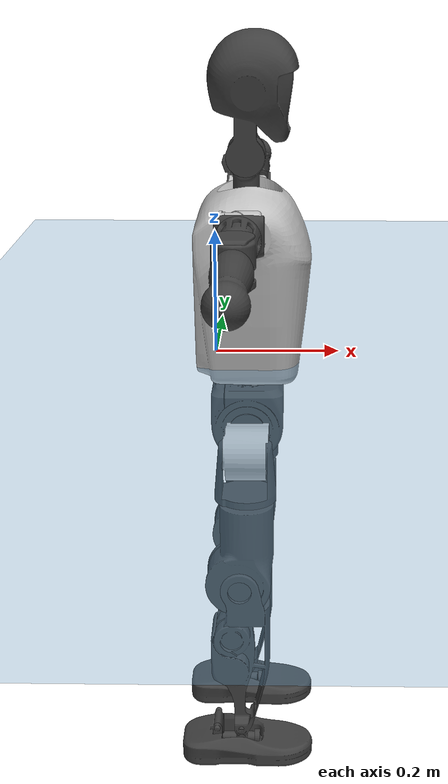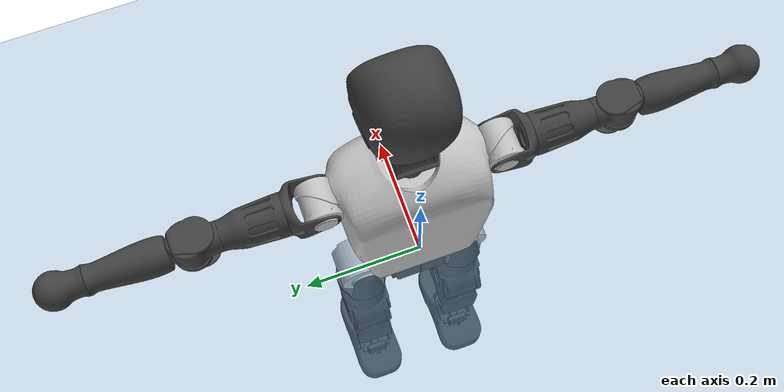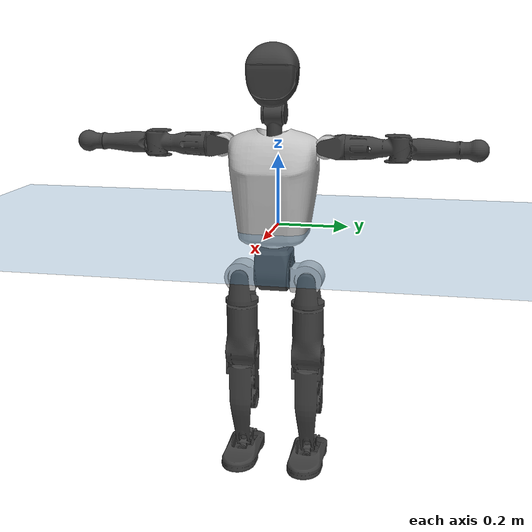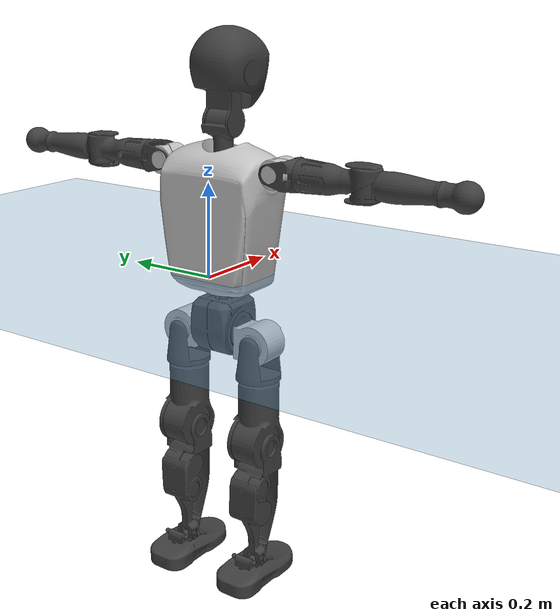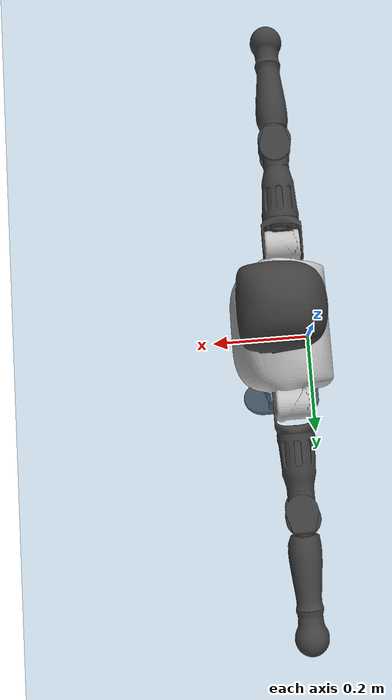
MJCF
<mujoco model="T1">
  <compiler angle="radian" assetdir="assets" balanceinertia="true" inertiafromgeom="false"/>

  <option timestep="0.005" density="1.2" viscosity="2e-05"/>

  <size nkey="1"/>

  <visual>
    <quality shadowsize="8192"/>
    <map shadowclip="0.5"/>
  </visual>

  <default>
    <default class="/">
      <joint armature="0.01" damping="0.01" frictionloss="0.1"/>
      <geom contype="0" conaffinity="0" group="1" solref="-1000 -80"/>
      <site size="0.01 0.005 0.005" group="5"/>
      <general forcelimited="true" biastype="affine" gainprm="25" biasprm="0 -25 -0.6"/>
      <default class="t1">
        <geom rgba="0.25 0.25 0.25 1"/>
        <default class="visual">
          <geom type="mesh" group="2"/>
        </default>
        <default class="collision">
          <geom group="3"/>
        </default>
        <default class="foot">
          <geom size="0.1115 0.05 0.015" type="box" condim="6" group="4" priority="1" solimp="0.015 1 0.015"/>
        </default>
        <default class="reward_collision_sphere">
          <geom group="5" rgba="1 0 0 1"/>
        </default>
      </default>
    </default>
  </default>

  <asset>
    <texture type="skybox" colorspace="auto" name="//unnamed_texture_0" builtin="gradient" rgb1="0.95 0.95 0.95" rgb2="0.95 0.95 0.95" width="100" height="600"/>
    <texture type="2d" colorspace="auto" name="texplane" builtin="checker" rgb1="0.345 0.575 0.748" rgb2="0.345 0.575 0.748" markrgb="1 1 1" width="512" height="512"/>
    <material name="MatPlane" class="/" texture="texplane" texuniform="true" texrepeat="2 2" specular="0.9"/>
    <mesh name="Trunk" class="/" file="Trunk.stl"/>
    <mesh name="H1" class="/" file="H1.stl"/>
    <mesh name="H2" class="/" file="H2.stl"/>
    <mesh name="AL1" class="/" file="AL1.stl"/>
    <mesh name="AL2" class="/" file="AL2.stl"/>
    <mesh name="AL3" class="/" file="AL3.stl"/>
    <mesh name="left_hand_link" class="/" file="left_hand_link.stl"/>
    <mesh name="AR1" class="/" file="AR1.stl"/>
    <mesh name="AR2" class="/" file="AR2.stl"/>
    <mesh name="AR3" class="/" file="AR3.stl"/>
    <mesh name="right_hand_link" class="/" file="right_hand_link.stl"/>
    <mesh name="Waist" class="/" file="Waist.stl"/>
    <mesh name="Hip_Pitch_Left" class="/" file="Hip_Pitch_Left.stl"/>
    <mesh name="Hip_Roll_Left" class="/" file="Hip_Roll_Left.stl"/>
    <mesh name="Hip_Yaw_Left" class="/" file="Hip_Yaw_Left.stl"/>
    <mesh name="Shank_Left" class="/" file="Shank_Left.stl"/>
    <mesh name="Ankle_Cross_Left" class="/" file="Ankle_Cross_Left.stl"/>
    <mesh name="left_foot_link" class="/" file="left_foot_link.stl"/>
    <mesh name="Hip_Pitch_Right" class="/" file="Hip_Pitch_Right.stl"/>
    <mesh name="Hip_Roll_Right" class="/" file="Hip_Roll_Right.stl"/>
    <mesh name="Hip_Yaw_Right" class="/" file="Hip_Yaw_Right.stl"/>
    <mesh name="Shank_Right" class="/" file="Shank_Right.stl"/>
    <mesh name="Ankle_Cross_Right" class="/" file="Ankle_Cross_Right.stl"/>
    <mesh name="right_foot_link" class="/" file="right_foot_link.stl"/>
  </asset>

  <worldbody>
    <geom name="floor" class="/" size="100 100 0.125" type="plane" group="0" material="MatPlane"/>
    <light name="toplight_shadow" class="/" pos="0 0 5" dir="0.0990148 0.0990148 -0.990148" type="directional" ambient="0.04 0.04 0.04" diffuse="0.55 0.55 0.55" specular="0.12 0.12 0.12"/>
    <light name="toplight_fill" class="/" pos="0 0 5" dir="0.0990148 0.0990148 -0.990148" type="directional" castshadow="false" ambient="0.04 0.04 0.04" diffuse="0.3 0.3 0.3" specular="0.08 0.08 0.08"/>
    <body name="trunk" childclass="t1" pos="0.000670812 -0.000187761 -0.000449863" quat="1 -6.7476e-05 -0.000160711 5.04688e-05">
      <inertial pos="0.0441849 -0.000320128 0.109862" quat="0.999956 0.000365218 -0.0093976 0.000492315" mass="9.22692" diaginertia="0.032598 0.0479876 0.0732907"/>
      <joint name="//unnamed_joint_0" type="free" armature="0" damping="0" frictionloss="0"/>
      <geom name="//unnamed_geom_1" class="visual" rgba="0.76 0.76 0.76 1" mesh="Trunk"/>
      <geom name="//unnamed_geom_2" class="collision" size="0.0692599 0.0923466 0.13852" pos="0.0487237 0 0.126221" type="box"/>
      <geom name="//unnamed_geom_3" class="reward_collision_sphere" size="0.106199" pos="0.0487237 0 0.105185"/>
      <geom name="//unnamed_geom_4" class="reward_collision_sphere" size="0.013852" pos="0.0487237 0.0770516 0"/>
      <geom name="//unnamed_geom_5" class="reward_collision_sphere" size="0.013852" pos="0.0487237 -0.0770516 0"/>
      <geom name="//unnamed_geom_6" class="reward_collision_sphere" size="0.013852" pos="0.0487237 0.0969944 0.189332"/>
      <geom name="//unnamed_geom_7" class="reward_collision_sphere" size="0.013852" pos="0.0487237 -0.0969944 0.189332"/>
      <site name="imu" pos="-0.00224517 0.000171992 0.000376865" size="0.00923466"/>
      <camera name="track" pos="0 -1.81298 0" quat="0.707107 0.707107 0 0" mode="trackcom"/>
      <camera name="ego_camera" pos="0.0990715 0 0.441775" quat="-0.5 -0.5 0.5 0.5"/>
      <body name="H1" pos="0.0503098 -2.28697e-05 0.255978" quat="1 -3.44353e-05 1.24307e-05 6.39312e-05">
        <inertial pos="-0.00115289 -0.00217187 0.0599618" quat="0.761361 -0.0188309 0.00250402 0.64805" mass="0.351453" diaginertia="8.67521e-05 0.000137158 0.000195151"/>
        <joint name="AAHead_yaw" pos="0 0 0" axis="-0.00127183 -0.000874419 0.999999" range="-1.55504 1.57511" armature="0.00930295" damping="0.0069663" frictionloss="0.0986174"/>
        <geom name="//unnamed_geom_8" class="visual" mesh="H1"/>
        <body name="H2" pos="-0.000760326 -0.000191058 0.0642576" quat="1 -2.76823e-07 -4.3124e-05 4.04392e-05">
          <inertial pos="0.00590556 0.0011522 0.103955" quat="0.988061 0.107399 -0.0780695 -0.0781395" mass="0.494659" diaginertia="0.000725708 0.00116549 0.00223508"/>
          <joint name="Head_pitch" pos="0 0 0" axis="-0.00192319 -0.999996 -0.00221557" range="-1.22083 0.352572" armature="0.00885698" damping="0.00680814" frictionloss="0.0920823"/>
          <geom name="//unnamed_geom_9" class="visual" mesh="H2"/>
          <geom name="//unnamed_geom_10" class="collision" size="0.0738772" pos="0.00812062 0 0.115703"/>
          <geom name="//unnamed_geom_11" class="reward_collision_sphere" size="0.0831119" pos="0.0162412 0 0.105185"/>
        </body>
      </body>
      <body name="AL1" pos="0.0477089 0.0972804 0.230682" quat="1 3.17741e-05 0.000462 1.7417e-06">
        <inertial pos="0.000246073 0.0405141 0.000259773" quat="0.500088 0.498773 -0.506588 0.494475" mass="0.416309" diaginertia="0.000484007 0.000785116 0.000378592"/>
        <joint name="Left_Shoulder_Pitch" pos="0 0 0" axis="0.000540827 0.999994 -0.00343468" range="-3.30356 1.20554" armature="0.00933197" damping="0.00795434" frictionloss="0.0899284"/>
        <geom name="//unnamed_geom_12" class="visual" rgba="0.76 0.76 0.76 1" mesh="AL1"/>
        <body name="AL2" pos="0.000996097 0.0434426 0.000915341" quat="1 -6.30276e-07 1.65006e-06 -3.49061e-07">
          <inertial pos="0.0026355 0.0352056 -0.000103843" quat="0.488135 0.511595 -0.488175 0.511547" mass="0.125667" diaginertia="0.000141405 0.000212602 0.000226271"/>
          <joint name="Left_Shoulder_Roll" pos="0 0 0" axis="-0.999996 -0.00251151 -0.000865971" range="-1.55441 1.72288" armature="0.00918624" damping="0.00454863" frictionloss="0.0908522"/>
          <geom name="//unnamed_geom_13" class="visual" mesh="AL2"/>
          <body name="AL3" pos="0.00077034 0.0548372 -0.000246561" quat="1 6.26273e-05 -5.32098e-05 -3.45555e-05">
            <inertial pos="-0.00133277 0.0771697 -0.000100293" quat="0.707349 0.706861 -7.95705e-05 -0.00216847" mass="0.796786" diaginertia="0.00448655 0.00776357 0.000797714"/>
            <joint name="Left_Elbow_Pitch" pos="0 0 0" axis="0.000816941 -1 7.13648e-05" range="-2.27737 2.26742" armature="0.00957939" damping="0.00981139" frictionloss="0.0901004"/>
            <geom name="//unnamed_geom_14" class="visual" mesh="AL3"/>
            <geom name="//unnamed_geom_15" class="collision" size="0.027704 0.0692599" pos="0 0.0453245 0" quat="0.707105 0.707108 0 0" type="cylinder"/>
            <geom name="//unnamed_geom_16" class="reward_collision_sphere" size="0.0332448"/>
            <body name="left_hand_link" pos="0.00126245 0.133481 -0.000261401" quat="1 0.00018473 3.83289e-05 -9.77829e-05">
              <inertial pos="2.79461e-05 0.100103 -0.000295523" quat="0.705512 0.708689 0.00105532 -0.00327652" mass="0.255908" diaginertia="0.00285812 0.00495688 0.000273727"/>
              <joint name="Left_Elbow_Yaw" pos="0 0 0" axis="0.00365168 0.00326937 0.999988" range="-2.45536 0.0148069" armature="0.00911314" damping="0.0115778" frictionloss="0.0916826"/>
              <geom name="//unnamed_geom_17" class="visual" mesh="left_hand_link"/>
              <geom name="//unnamed_geom_18" class="collision" size="0.027704 0.0808032" pos="0 0.117844 0" quat="0.707105 0.707108 0 0" type="cylinder"/>
              <geom name="//unnamed_geom_19" class="reward_collision_sphere" size="0.0461733"/>
              <geom name="//unnamed_geom_20" class="reward_collision_sphere" size="0.0323213" pos="0 0.0997138 0"/>
              <geom name="//unnamed_geom_21" class="reward_collision_sphere" size="0.0323213" pos="0 0.194895 0"/>
            </body>
          </body>
        </body>
      </body>
      <body name="AR1" pos="0.0452842 -0.0962425 0.230805" quat="1 7.8671e-05 0.000338676 -0.000107007">
        <inertial pos="-0.00139107 -0.0412239 0.000878972" quat="0.502946 0.494685 -0.505975 0.496308" mass="0.421894" diaginertia="0.000487544 0.000792625 0.000381295"/>
        <joint name="Right_Shoulder_Pitch" pos="0 0 0" axis="0.00129132 -0.999998 0.00137853" range="-1.23135 3.31274" armature="0.00901142" damping="0.00504412" frictionloss="0.0910268"/>
        <geom name="//unnamed_geom_22" class="visual" rgba="0.76 0.76 0.76 1" mesh="AR1"/>
        <body name="AR2" pos="-0.000626702 -0.0408463 -7.23626e-05" quat="1 -0.000126126 -0.000181839 -0.000542433">
          <inertial pos="0.00394036 -0.0344287 0.00133489" quat="0.512624 0.490223 -0.507843 0.488869" mass="0.128982" diaginertia="0.000144459 0.000215922 0.000227414"/>
          <joint name="Right_Shoulder_Roll" pos="0 0 0" axis="-0.999996 0.00284322 -8.2382e-05" stiffness="0.00376805" range="-1.73791 1.57776" armature="0.00895821" damping="0.00536037" frictionloss="0.0901719"/>
          <geom name="//unnamed_geom_23" class="visual" mesh="AR2"/>
          <body name="AR3" pos="-0.000492785 -0.0551381 0.000127539" quat="1 6.44264e-05 -3.66688e-05 -3.74316e-05">
            <inertial pos="0.00085265 -0.077562 0.000399457" quat="0.707962 0.70625 0.000359185 -0.000979905" mass="0.810105" diaginertia="0.00453908 0.00790613 0.000811488"/>
            <joint name="Right_Elbow_Pitch" pos="0 0 0" axis="-0.000248824 1 0.000165047" stiffness="0.00230298" range="-2.27991 2.26759" armature="0.00920812" damping="0.00902675" frictionloss="0.0986099"/>
            <geom name="//unnamed_geom_24" class="visual" mesh="AR3"/>
            <geom name="//unnamed_geom_25" class="collision" size="0.027704 0.0692599" pos="0 -0.0453245 0" quat="0.707105 0.707108 0 0" type="cylinder"/>
            <geom name="//unnamed_geom_26" class="reward_collision_sphere" size="0.0332448"/>
            <body name="right_hand_link" pos="0.000307339 -0.132564 -9.66387e-06" quat="1 -3.18249e-05 6.47163e-05 -2.08445e-05">
              <inertial pos="-0.000226729 -0.0994425 0.000398631" quat="0.705787 0.708424 -0.000442382 0.00023508" mass="0.261585" diaginertia="0.0029143 0.00504283 0.000283212"/>
              <joint name="Right_Elbow_Yaw" pos="0 0 0" axis="0.00232271 0.00142421 0.999996" stiffness="0.000150733" range="0.00184486 2.44017" armature="0.00960503" damping="0.00592005" frictionloss="0.0880926"/>
              <geom name="//unnamed_geom_27" class="visual" mesh="right_hand_link"/>
              <geom name="//unnamed_geom_28" class="collision" size="0.027704 0.0808032" pos="0 -0.117844 0" quat="0.707105 0.707108 0 0" type="cylinder"/>
              <geom name="//unnamed_geom_29" class="reward_collision_sphere" size="0.0461733"/>
              <geom name="//unnamed_geom_30" class="reward_collision_sphere" size="0.0323213" pos="0 -0.0997138 0"/>
              <geom name="//unnamed_geom_31" class="reward_collision_sphere" size="0.0323213" pos="0 -0.194895 0"/>
            </body>
          </body>
        </body>
      </body>
      <body name="Waist" pos="0.050392 7.17501e-05 -0.121226" quat="1 0.000260016 -0.000362241 0.000219937">
        <inertial pos="0.00101629 -0.00104762 0.0085269" quat="0.983381 0.00137335 -0.18154 -0.00158118" mass="2.02285" diaginertia="0.00190152 0.003255 0.0060972"/>
        <joint name="Waist" pos="0 0 0" axis="-0.00417852 -0.000140627 0.999991" range="-1.57071 1.57628" armature="0.00925858" damping="0.00918191" frictionloss="0.093349"/>
        <geom name="//unnamed_geom_32" class="visual" mesh="Waist"/>
        <body name="Hip_Pitch_Left" pos="0.000859652 0.0959836 0.00086931" quat="1 4.00762e-05 -8.76673e-05 0.000320542">
          <inertial pos="0.00145312 -0.00708875 -0.019295" quat="0.975388 0.219986 0.0145842 0.00330128" mass="0.795702" diaginertia="0.000626834 0.000880109 0.00159722"/>
          <joint name="Left_Hip_Pitch" pos="0 0 0" axis="-0.00211137 0.999987 -0.00467113" range="-1.81359 1.56309" armature="0.00880928" damping="0.00663931" frictionloss="0.091049"/>
          <geom name="//unnamed_geom_33" class="visual" rgba="0.76 0.76 0.76 1" mesh="Hip_Pitch_Left"/>
          <body name="Hip_Roll_Left" pos="0.000641687 0.000777982 -0.0235487" quat="1 0.000321375 -0.000147547 7.94333e-05">
            <inertial pos="0.000928465 -0.00113305 -0.0556149" quat="0.707146 -0.00599113 -0.0059808 0.707017" mass="0.304776" diaginertia="0.000616935 0.000923498 0.000677883"/>
            <joint name="Left_Hip_Roll" pos="0 0 0" axis="-0.99998 0.00149102 -0.00610888" range="-1.57796 0.183938" armature="0.00938403" damping="0.00212161" frictionloss="0.0908014"/>
            <geom name="//unnamed_geom_34" class="visual" mesh="Hip_Roll_Left"/>
            <geom name="//unnamed_geom_35" class="reward_collision_sphere" size="0.0507906"/>
            <body name="Hip_Yaw_Left" pos="-0.000584958 0.000558756 -0.0872805" quat="1 0.00031743 -0.000189981 -0.000230132">
              <inertial pos="-0.00504843 -0.000306194 -0.0934773" quat="0.696423 -0.0323763 -0.0320909 0.716182" mass="1.71446" diaginertia="0.00913891 0.0152342 0.00329753"/>
              <joint name="Left_Hip_Yaw" pos="0 0 0" axis="0.00152839 0.000187513 -0.999999" range="-1.02906 0.996814" armature="0.00914454" damping="0.00792765" frictionloss="0.0931046"/>
              <geom name="//unnamed_geom_36" class="visual" mesh="Hip_Yaw_Left"/>
              <geom name="//unnamed_geom_37" class="collision" size="0.0461733 0.0738772" type="cylinder"/>
              <body name="Shank_Left" pos="-0.0120063 -4.67885e-05 -0.144051" quat="1 2.72962e-07 -1.28318e-06 -1.83209e-07">
                <inertial pos="-0.00448346 0.000601001 -0.130967" quat="0.997785 -0.00160287 -0.0218035 0.0628241" mass="1.36932" diaginertia="0.0122011 0.0209507 0.00241001"/>
                <joint name="Left_Knee_Pitch" pos="0 0 0" axis="-0.00438885 0.999986 0.00307135" range="-0.00044505 2.35604" armature="0.00891919" damping="0.0107965" frictionloss="0.0936144"/>
                <geom name="//unnamed_geom_38" class="visual" mesh="Shank_Left"/>
                <geom name="//unnamed_geom_39" class="collision" size="0.0461733 0.0692599" pos="0 0 -0.126221" type="cylinder"/>
                <geom name="//unnamed_geom_40" class="reward_collision_sphere" size="0.0600253"/>
                <body name="Ankle_Cross_Left" pos="-0.00018917 -0.000209147 -0.293591" quat="1 0.00034935 0.000258628 0.000310461">
                  <inertial pos="-0.00419182 0.000679903 -0.00936096" quat="0.443089 0.551831 0.549814 0.443688" mass="0.0579362" diaginertia="1.03844e-05 1.57405e-05 1.45144e-05"/>
                  <joint name="Left_Ankle_Pitch" pos="0 0 0" axis="-0.00114993 0.999999 0.000513416" range="-0.870126 0.346079" armature="0.00983038" damping="0.00937078" frictionloss="0.0910585"/>
                  <geom name="//unnamed_geom_41" class="visual" mesh="Ankle_Cross_Left"/>
                  <body name="left_foot_link" pos="0.00046475 0.000333883 -0.0124335" quat="1 0.000527847 0.000236572 0.000267639">
                    <inertial pos="0.000219411 0.00103035 -0.010072" quat="-0.000373622 0.622479 0.00148521 0.782635" mass="0.54468" diaginertia="0.000976593 0.00147338 0.00284742"/>
                    <joint name="Left_Ankle_Roll" pos="0 0 0" axis="-0.999957 -0.00322507 0.00872717" range="-0.44347 0.425032" armature="0.00926506" damping="0.0083574" frictionloss="0.0911618"/>
                    <geom name="//unnamed_geom_42" class="visual" mesh="left_foot_link"/>
                    <geom name="left_foot" class="foot" size="0.101936 0.0466942 0.0136104" pos="0.00812062 0 -0.0157777"/>
                    <geom name="//unnamed_geom_44" class="reward_collision_sphere" size="0.0480202" pos="0.00812062 0 -0.0157777"/>
                    <geom name="//unnamed_geom_45" class="reward_collision_sphere" size="0.027704" pos="0.0771459 -0.0208493 -0.0157777"/>
                    <geom name="//unnamed_geom_46" class="reward_collision_sphere" size="0.027704" pos="-0.0568443 -0.0208493 -0.0157777"/>
                    <site name="left_foot" class="foot" pos="0.00812062 0 -0.0157777" size="0.00923466"/>
                  </body>
                </body>
              </body>
            </body>
          </body>
        </body>
        <body name="Hip_Pitch_Right" pos="0.000982242 -0.0952351 -0.000963551" quat="1 -0.000108911 1.03113e-05 5.05256e-05">
          <inertial pos="-0.000405277 0.00650259 -0.018473" quat="0.973467 -0.228309 0.0147598 -0.0042946" mass="0.801956" diaginertia="0.000633614 0.00088935 0.00159149"/>
          <joint name="Right_Hip_Pitch" pos="0 0 0" axis="0.00128582 -0.999999 0.000206276" range="-1.57659 1.81486" armature="0.00952437" damping="0.00256214" frictionloss="0.0890759"/>
          <geom name="//unnamed_geom_47" class="visual" rgba="0.76 0.76 0.76 1" mesh="Hip_Pitch_Right"/>
          <body name="Hip_Roll_Right" pos="-0.000231793 0.00021961 -0.0221203" quat="1 0.000155471 -5.74898e-05 -0.000193058">
            <inertial pos="0.00179812 -0.000395533 -0.0569889" quat="0.7069 -0.00576982 -0.00659969 0.707259" mass="0.298534" diaginertia="0.000618553 0.000924682 0.000661298"/>
            <joint name="Right_Hip_Roll" pos="0 0 0" axis="-0.999997 -0.000506182 -0.00254832" stiffness="0.000350401" range="-0.212018 1.56463" armature="0.00938223" damping="0.00538835" frictionloss="0.089324"/>
            <geom name="//unnamed_geom_48" class="visual" mesh="Hip_Roll_Right"/>
            <geom name="//unnamed_geom_49" class="reward_collision_sphere" size="0.0507906"/>
            <body name="Hip_Yaw_Right" pos="-0.000851425 -0.000544549 -0.0866141" quat="1 2.3493e-05 -9.91211e-05 -4.02934e-05">
              <inertial pos="-0.00580922 -0.000425504 -0.0947944" quat="0.714942 -0.0306551 -0.0341927 0.697674" mass="1.71116" diaginertia="0.00919941 0.015455 0.00338433"/>
              <joint name="Right_Hip_Yaw" pos="0 0 0" axis="0.00312491 -0.00199652 -0.999993" stiffness="0.00303375" range="-1.00427 0.999741" armature="0.00945682" damping="0.0140367" frictionloss="0.0943183"/>
              <geom name="//unnamed_geom_50" class="visual" mesh="Hip_Yaw_Right"/>
              <geom name="//unnamed_geom_51" class="collision" size="0.0461733 0.0738772" type="cylinder"/>
              <body name="Shank_Right" pos="-0.0115548 -0.000455058 -0.142173" quat="1 0.000150317 5.4047e-05 -8.02265e-06">
                <inertial pos="-0.00531829 -9.24324e-05 -0.129117" quat="0.999223 0.000573197 -0.0227377 -0.0321914" mass="1.41863" diaginertia="0.0125568 0.0214749 0.00252806"/>
                <joint name="Right_Knee_Pitch" pos="0 0 0" axis="0.00123994 -0.999997 -0.00214515" range="-2.35074 -0.00725657" armature="0.00918084" damping="0.00540793" frictionloss="0.0901787"/>
                <geom name="//unnamed_geom_52" class="visual" mesh="Shank_Right"/>
                <geom name="//unnamed_geom_53" class="collision" size="0.0461733 0.0692599" pos="0 0 -0.126221" type="cylinder"/>
                <geom name="//unnamed_geom_54" class="reward_collision_sphere" size="0.0600253"/>
                <body name="Ankle_Cross_Right" pos="0.000882645 -0.000506289 -0.294451" quat="1 3.22801e-05 -4.37656e-06 6.9688e-05">
                  <inertial pos="-0.00250541 -0.000690364 -0.00837109" quat="0.443155 0.550984 0.551094 0.443087" mass="0.0578736" diaginertia="1.02627e-05 1.57983e-05 1.46312e-05"/>
                  <joint name="Right_Ankle_Pitch" pos="0 0 0" axis="0.000461135 -1 0.000382312" range="-0.366826 0.876328" armature="0.00927133" damping="0.00191081" frictionloss="0.0929319"/>
                  <geom name="//unnamed_geom_55" class="visual" mesh="Ankle_Cross_Right"/>
                  <body name="right_foot_link" pos="-0.000779331 -0.000920494 -0.0101206" quat="1 -5.67737e-05 9.01003e-06 1.52302e-05">
                    <inertial pos="3.0478e-06 1.68757e-05 -0.0107881" quat="0.000570734 0.620444 0.000202082 0.784251" mass="0.535706" diaginertia="0.000939685 0.00143614 0.00273246"/>
                    <joint name="Right_Ankle_Roll" pos="0 0 0" axis="-0.999996 -0.0023381 0.00130391" range="-0.436326 0.454363" armature="0.00853665" damping="0" frictionloss="0.0897059"/>
                    <geom name="//unnamed_geom_56" class="visual" mesh="right_foot_link"/>
                    <geom name="right_foot" class="foot" size="0.100328 0.0466509 0.0140179" pos="0.00812062 0 -0.0157777"/>
                    <geom name="//unnamed_geom_58" class="reward_collision_sphere" size="0.0369386"/>
                    <geom name="//unnamed_geom_59" class="reward_collision_sphere" size="0.027704" pos="0.00812062 0 -0.0157777"/>
                    <geom name="//unnamed_geom_60" class="reward_collision_sphere" size="0.027704" pos="0.0771459 0.0208493 -0.0157777"/>
                    <geom name="//unnamed_geom_61" class="reward_collision_sphere" size="0.027704" pos="-0.0568443 0.0208493 -0.0157777"/>
                    <site name="right_foot" class="foot" pos="0.00812062 0 -0.0157777" size="0.00923466"/>
                  </body>
                </body>
              </body>
            </body>
          </body>
        </body>
      </body>
    </body>
  </worldbody>

  <contact>
    <pair class="/" geom1="floor" geom2="left_foot" name="//unnamed_contact_0"/>
    <pair class="/" geom1="floor" geom2="right_foot" name="//unnamed_contact_1"/>
  </contact>

  <actuator>
    <general name="AAHead_yaw" class="/" joint="AAHead_yaw" forcerange="-6.42942 6.42942" gainprm="23.5363" biasprm="0 -23.5363 -0.529582"/>
    <general name="Head_pitch" class="/" joint="Head_pitch" forcerange="-6.40408 6.40408" gainprm="23.5363" biasprm="0 -23.5363 -0.529582"/>
    <general name="Left_Shoulder_Pitch" class="/" joint="Left_Shoulder_Pitch" forcerange="-15.7042 15.7042" gainprm="23.5363" biasprm="0 -23.5363 -0.529582"/>
    <general name="Left_Shoulder_Roll" class="/" joint="Left_Shoulder_Roll" forcerange="-16.316 16.316" gainprm="23.5363" biasprm="0 -23.5363 -0.529582"/>
    <general name="Left_Elbow_Pitch" class="/" joint="Left_Elbow_Pitch" forcerange="-16.2306 16.2306" gainprm="23.5363" biasprm="0 -23.5363 -0.529582"/>
    <general name="Left_Elbow_Yaw" class="/" joint="Left_Elbow_Yaw" forcerange="-16.6432 16.6432" gainprm="23.5363" biasprm="0 -23.5363 -0.529582"/>
    <general name="Right_Shoulder_Pitch" class="/" joint="Right_Shoulder_Pitch" forcerange="-16.4793 16.4793" gainprm="23.5363" biasprm="0 -23.5363 -0.529582"/>
    <general name="Right_Shoulder_Roll" class="/" joint="Right_Shoulder_Roll" forcerange="-16.2854 16.2854" gainprm="23.5363" biasprm="0 -23.5363 -0.529582"/>
    <general name="Right_Elbow_Pitch" class="/" joint="Right_Elbow_Pitch" forcerange="-16.9645 16.9645" gainprm="23.5363" biasprm="0 -23.5363 -0.529582"/>
    <general name="Right_Elbow_Yaw" class="/" joint="Right_Elbow_Yaw" forcerange="-16.5725 16.5725" gainprm="23.5363" biasprm="0 -23.5363 -0.529582"/>
    <general name="Waist" class="/" joint="Waist" forcerange="-27.9527 27.9527" gainprm="23.5363" biasprm="0 -23.5363 -0.529582"/>
    <general name="Left_Hip_Pitch" class="/" joint="Left_Hip_Pitch" forcerange="-42.1153 42.1153" gainprm="23.5363" biasprm="0 -23.5363 -0.529582"/>
    <general name="Left_Hip_Roll" class="/" joint="Left_Hip_Roll" forcerange="-27.06 27.06" gainprm="23.5363" biasprm="0 -23.5363 -0.529582"/>
    <general name="Left_Hip_Yaw" class="/" joint="Left_Hip_Yaw" forcerange="-28.6835 28.6835" gainprm="23.5363" biasprm="0 -23.5363 -0.529582"/>
    <general name="Left_Knee_Pitch" class="/" joint="Left_Knee_Pitch" forcerange="-55.1255 55.1255" gainprm="23.5363" biasprm="0 -23.5363 -0.529582"/>
    <general name="Left_Ankle_Pitch" class="/" joint="Left_Ankle_Pitch" forcerange="-18.5182 18.5182" gainprm="23.5363" biasprm="0 -23.5363 -0.529582"/>
    <general name="Left_Ankle_Roll" class="/" joint="Left_Ankle_Roll" forcerange="-13.6864 13.6864" gainprm="23.5363" biasprm="0 -23.5363 -0.529582"/>
    <general name="Right_Hip_Pitch" class="/" joint="Right_Hip_Pitch" forcerange="-42.1844 42.1844" gainprm="23.5363" biasprm="0 -23.5363 -0.529582"/>
    <general name="Right_Hip_Roll" class="/" joint="Right_Hip_Roll" forcerange="-28.9286 28.9286" gainprm="23.5363" biasprm="0 -23.5363 -0.529582"/>
    <general name="Right_Hip_Yaw" class="/" joint="Right_Hip_Yaw" forcerange="-27.5452 27.5452" gainprm="23.5363" biasprm="0 -23.5363 -0.529582"/>
    <general name="Right_Knee_Pitch" class="/" joint="Right_Knee_Pitch" forcerange="-53.4007 53.4007" gainprm="23.5363" biasprm="0 -23.5363 -0.529582"/>
    <general name="Right_Ankle_Pitch" class="/" joint="Right_Ankle_Pitch" forcerange="-17.7172 17.7172" gainprm="23.5363" biasprm="0 -23.5363 -0.529582"/>
    <general name="Right_Ankle_Roll" class="/" joint="Right_Ankle_Roll" forcerange="-13.7694 13.7694" gainprm="23.5363" biasprm="0 -23.5363 -0.529582"/>
  </actuator>

  <sensor>
    <gyro site="imu" name="imu_angular_velocity"/>
    <velocimeter site="imu" name="imu_linear_velocity"/>
    <framelinvel objtype="site" objname="left_foot" name="left_foot_global_linear_velocity"/>
    <framelinvel objtype="site" objname="right_foot" name="right_foot_global_linear_velocity"/>
  </sensor>

  <keyframe>
    <key name="home" qpos="0 0 0.6385 1 0 0 0 0 0 0 1.4 0 -0.4 0 -1.4 0 0.4 0 -0.4 0 0 0.8 -0.4 0 0.4 0 0 -0.8 0.4 0"/>
  </keyframe>
</mujoco>
